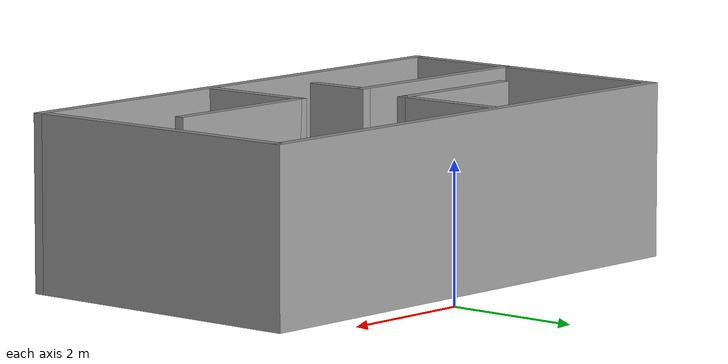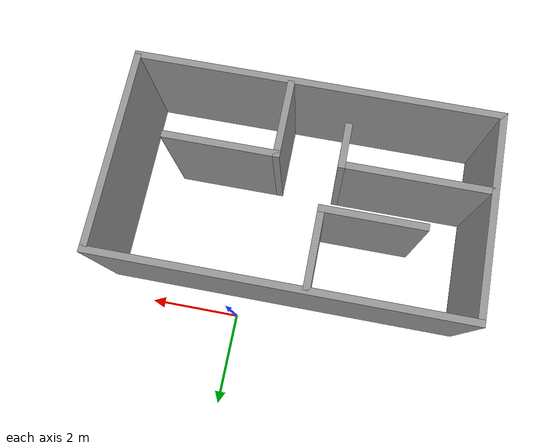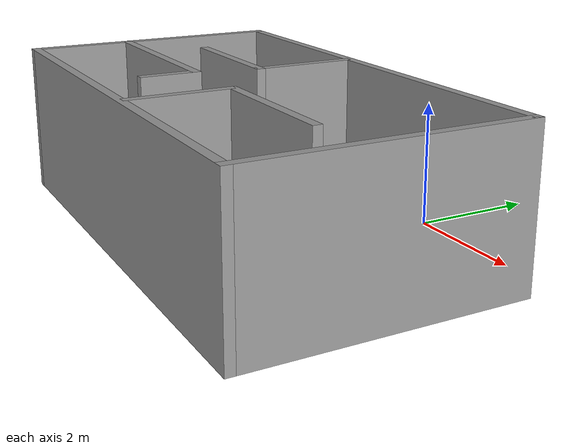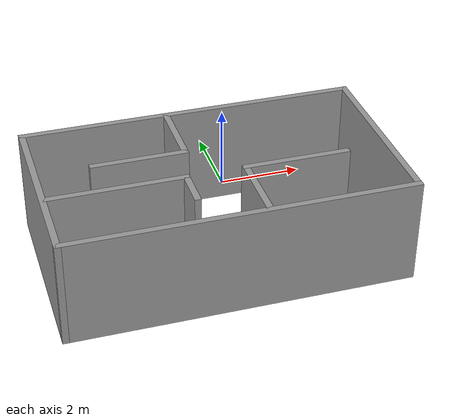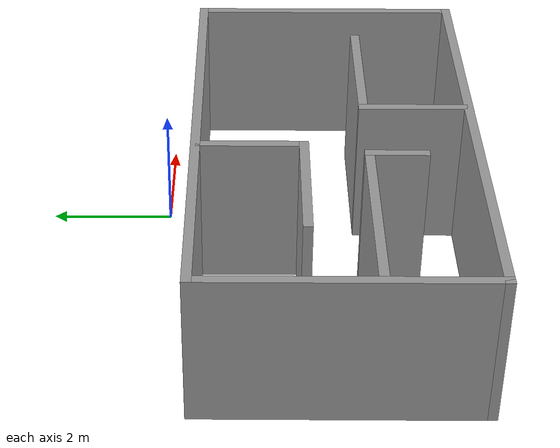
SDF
<?xml version='1.0'?>
<sdf version='1.7'>
  <model name='room'>
    <pose>-0.997318 -2.47474 0 0 -0 0</pose>
    <link name='Wall_10'>
      <collision name='Wall_10_Collision'>
        <geometry>
          <box>
            <size>8 0.15 2.5</size>
          </box>
        </geometry>
        <pose>0 0 1.25 0 -0 0</pose>
      </collision>
      <visual name='Wall_10_Visual'>
        <pose>0 0 1.25 0 -0 0</pose>
        <geometry>
          <box>
            <size>8 0.15 2.5</size>
          </box>
        </geometry>
        <material>
          <script>
            <uri>file://media/materials/scripts/gazebo.material</uri>
            <name>Gazebo/Grey</name>
          </script>
          <ambient>1 1 1 1</ambient>
        </material>
        <meta>
          <layer>0</layer>
        </meta>
      </visual>
      <pose>0 -2.39974 0 0 -0 3.14159</pose>
    </link>
    <link name='Wall_11'>
      <collision name='Wall_11_Collision'>
        <geometry>
          <box>
            <size>4.5 0.15 2.5</size>
          </box>
        </geometry>
        <pose>0 0 1.25 0 -0 0</pose>
      </collision>
      <visual name='Wall_11_Visual'>
        <pose>0 0 1.25 0 -0 0</pose>
        <geometry>
          <box>
            <size>4.5 0.15 2.5</size>
          </box>
        </geometry>
        <material>
          <script>
            <uri>file://media/materials/scripts/gazebo.material</uri>
            <name>Gazebo/Grey</name>
          </script>
          <ambient>1 1 1 1</ambient>
        </material>
        <meta>
          <layer>0</layer>
        </meta>
      </visual>
      <pose>-3.925 -0.224744 0 0 -0 1.5708</pose>
    </link>
    <link name='Wall_13'>
      <collision name='Wall_13_Collision'>
        <geometry>
          <box>
            <size>1.75 0.15 2.5</size>
          </box>
        </geometry>
        <pose>0 0 1.25 0 -0 0</pose>
      </collision>
      <visual name='Wall_13_Visual'>
        <pose>0 0 1.25 0 -0 0</pose>
        <geometry>
          <box>
            <size>1.75 0.15 2.5</size>
          </box>
        </geometry>
        <material>
          <script>
            <uri>file://media/materials/scripts/gazebo.material</uri>
            <name>Gazebo/Grey</name>
          </script>
          <ambient>1 1 1 1</ambient>
        </material>
        <meta>
          <layer>0</layer>
        </meta>
      </visual>
      <pose>-0.5394 1.07091 0 0 -0 -1.5708</pose>
    </link>
    <link name='Wall_14'>
      <collision name='Wall_14_Collision'>
        <geometry>
          <box>
            <size>2.25 0.15 2.5</size>
          </box>
        </geometry>
        <pose>0 0 1.25 0 -0 0</pose>
      </collision>
      <visual name='Wall_14_Visual'>
        <pose>0 0 1.25 0 -0 0</pose>
        <geometry>
          <box>
            <size>2.25 0.15 2.5</size>
          </box>
        </geometry>
        <material>
          <script>
            <uri>file://media/materials/scripts/gazebo.material</uri>
            <name>Gazebo/Grey</name>
          </script>
          <ambient>1 1 1 1</ambient>
        </material>
        <meta>
          <layer>0</layer>
        </meta>
      </visual>
      <pose>-1.5894 0.270905 0 0 -0 3.14159</pose>
    </link>
    <link name='Wall_16'>
      <collision name='Wall_16_Collision'>
        <geometry>
          <box>
            <size>3.25 0.15 2.5</size>
          </box>
        </geometry>
        <pose>0 0 1.25 0 -0 0</pose>
      </collision>
      <visual name='Wall_16_Visual'>
        <pose>0 0 1.25 0 -0 0</pose>
        <geometry>
          <box>
            <size>3.25 0.15 2.5</size>
          </box>
        </geometry>
        <material>
          <script>
            <uri>file://media/materials/scripts/gazebo.material</uri>
            <name>Gazebo/Grey</name>
          </script>
          <ambient>1 1 1 1</ambient>
        </material>
        <meta>
          <layer>0</layer>
        </meta>
      </visual>
      <pose>-2.33533 -0.721195 0 0 -0 0</pose>
    </link>
    <link name='Wall_17'>
      <collision name='Wall_17_Collision'>
        <geometry>
          <box>
            <size>1 0.15 2.5</size>
          </box>
        </geometry>
        <pose>0 0 1.25 0 -0 0</pose>
      </collision>
      <visual name='Wall_17_Visual'>
        <pose>0 0 1.25 0 -0 0</pose>
        <geometry>
          <box>
            <size>1 0.15 2.5</size>
          </box>
        </geometry>
        <material>
          <script>
            <uri>file://media/materials/scripts/gazebo.material</uri>
            <name>Gazebo/Grey</name>
          </script>
          <ambient>1 1 1 1</ambient>
        </material>
        <meta>
          <layer>0</layer>
        </meta>
      </visual>
      <pose>-0.785325 -1.14619 0 0 -0 -1.5708</pose>
    </link>
    <link name='Wall_19'>
      <collision name='Wall_19_Collision'>
        <geometry>
          <box>
            <size>1.75 0.15 2.5</size>
          </box>
        </geometry>
        <pose>0 0 1.25 0 -0 0</pose>
      </collision>
      <visual name='Wall_19_Visual'>
        <pose>0 0 1.25 0 -0 0</pose>
        <geometry>
          <box>
            <size>1.75 0.15 2.5</size>
          </box>
        </geometry>
        <material>
          <script>
            <uri>file://media/materials/scripts/gazebo.material</uri>
            <name>Gazebo/Grey</name>
          </script>
          <ambient>1 1 1 1</ambient>
        </material>
        <meta>
          <layer>0</layer>
        </meta>
      </visual>
      <pose>0.5715 -1.50819 0 0 -0 1.5708</pose>
    </link>
    <link name='Wall_20'>
      <collision name='Wall_20_Collision'>
        <geometry>
          <box>
            <size>2.5 0.15 2.5</size>
          </box>
        </geometry>
        <pose>0 0 1.25 0 -0 0</pose>
      </collision>
      <visual name='Wall_20_Visual'>
        <pose>0 0 1.25 0 -0 0</pose>
        <geometry>
          <box>
            <size>2.5 0.15 2.5</size>
          </box>
        </geometry>
        <material>
          <script>
            <uri>file://media/materials/scripts/gazebo.material</uri>
            <name>Gazebo/Grey</name>
          </script>
          <ambient>1 1 1 1</ambient>
        </material>
        <meta>
          <layer>0</layer>
        </meta>
      </visual>
      <pose>1.7465 -0.708194 0 0 -0 0</pose>
    </link>
    <link name='Wall_8'>
      <collision name='Wall_8_Collision'>
        <geometry>
          <box>
            <size>8 0.15 2.5</size>
          </box>
        </geometry>
        <pose>0 0 1.25 0 -0 0</pose>
      </collision>
      <visual name='Wall_8_Visual'>
        <pose>0 0 1.25 0 -0 0</pose>
        <geometry>
          <box>
            <size>8 0.15 2.5</size>
          </box>
        </geometry>
        <material>
          <script>
            <uri>file://media/materials/scripts/gazebo.material</uri>
            <name>Gazebo/Grey</name>
          </script>
          <ambient>1 1 1 1</ambient>
        </material>
        <meta>
          <layer>0</layer>
        </meta>
      </visual>
      <pose>0 1.95026 0 0 -0 0</pose>
    </link>
    <link name='Wall_9'>
      <collision name='Wall_9_Collision'>
        <geometry>
          <box>
            <size>4.5 0.15 2.5</size>
          </box>
        </geometry>
        <pose>0 0 1.25 0 -0 0</pose>
      </collision>
      <visual name='Wall_9_Visual'>
        <pose>0 0 1.25 0 -0 0</pose>
        <geometry>
          <box>
            <size>4.5 0.15 2.5</size>
          </box>
        </geometry>
        <material>
          <script>
            <uri>file://media/materials/scripts/gazebo.material</uri>
            <name>Gazebo/Grey</name>
          </script>
          <ambient>1 1 1 1</ambient>
        </material>
        <meta>
          <layer>0</layer>
        </meta>
      </visual>
      <pose>3.925 -0.224744 0 0 -0 -1.5708</pose>
    </link>
    <static>1</static>
  </model>
</sdf>
